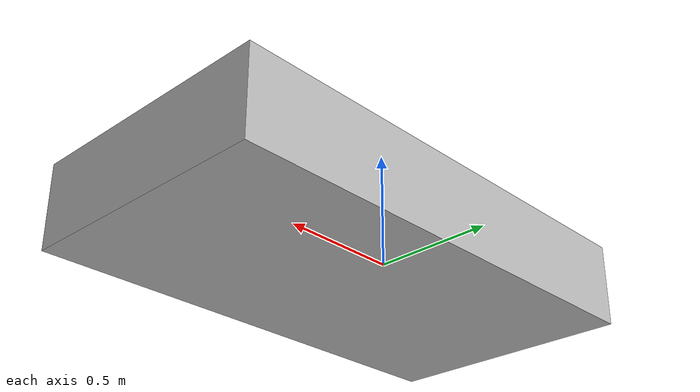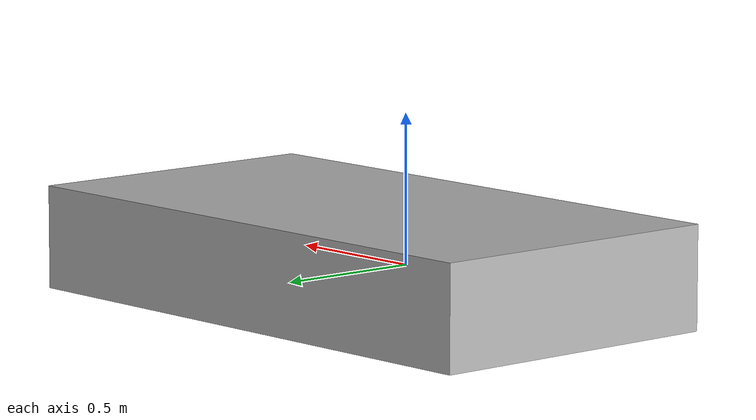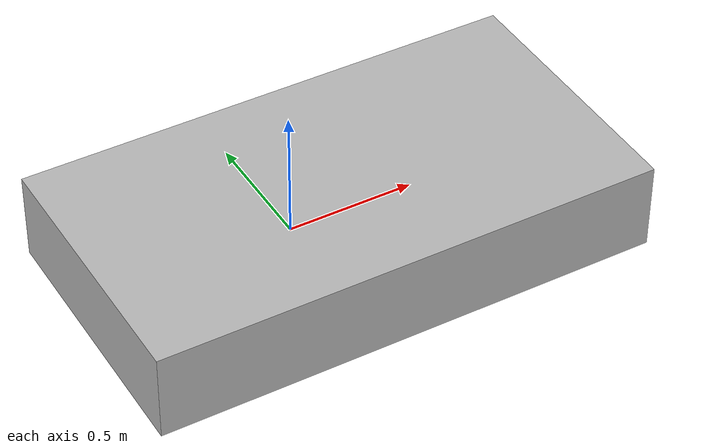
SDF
<?xml version="1.0" ?>
<sdf version="1.10">
  <model name="otter">
    <pose>0 0 0 0 0 0</pose>
    <link name="base_link">
      <inertial>
        <pose>0.2 0 -0.2 0 0 0</pose>
        <mass>55</mass>
        <inertia>
          <ixx>9.504</ixx><iyy>15.75</iyy><izz>15.95</izz>
          <ixy>0</ixy><ixz>0</ixz><iyz>0</iyz>
        </inertia>

      </inertial>

      <collision name="hull_collision_0">
        <pose>0.2 0 0 0 0 0</pose>
        <geometry><box><size>2 1.08 0.0496838302</size></box></geometry>
      </collision>
      <visual name="hull_visual_0">
        <pose>0.2 0 0 0 0 0</pose>
        <geometry><box><size>2 1.08 0.35</size></box></geometry>
      </visual>

    </link>

    <plugin filename="gz-sim-hydrodynamics-system" name="gz::sim::systems::Hydrodynamics">
      <link_name>base_link</link_name>
      <water_density>1025</water_density>
      <xU>-77.533437014</xU>
      <yV>-137.5</yV>
      <zW>0</zW>
      <kP>0</kP>
      <mQ>0</mQ>
      <nR>-39.325</nR>
      <xUabsU>0</xUabsU>
      <yVabsV>0</yVabsV>
      <zWabsW>0</zWabsW>
      <kPabsP>0</kPabsP>
      <mQabsQ>0</mQabsQ>
      <nRabsR>-393.25</nRabsR>

    </plugin>

    <plugin filename="gz-sim-pose-publisher-system" name="gz::sim::systems::PosePublisher">
      <publish_model_pose>true</publish_model_pose>
      <publish_link_pose>true</publish_link_pose>
      <use_pose_vector_msg>true</use_pose_vector_msg>
      <static_publisher>false</static_publisher>
    </plugin>

  </model>
</sdf>
